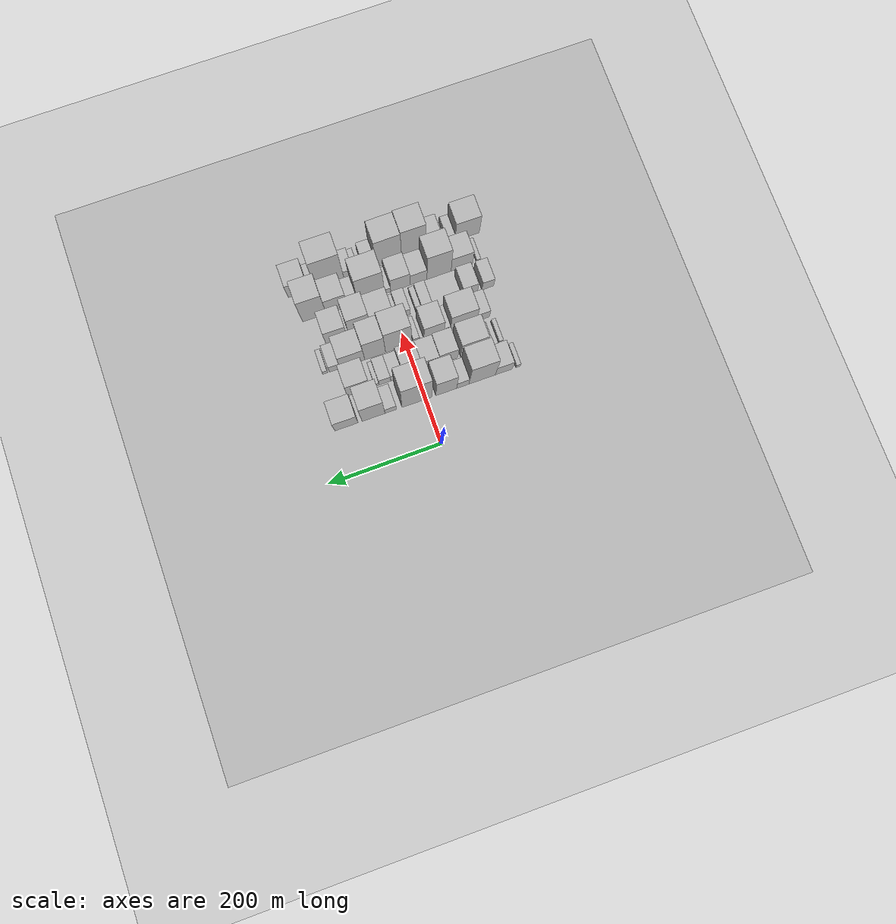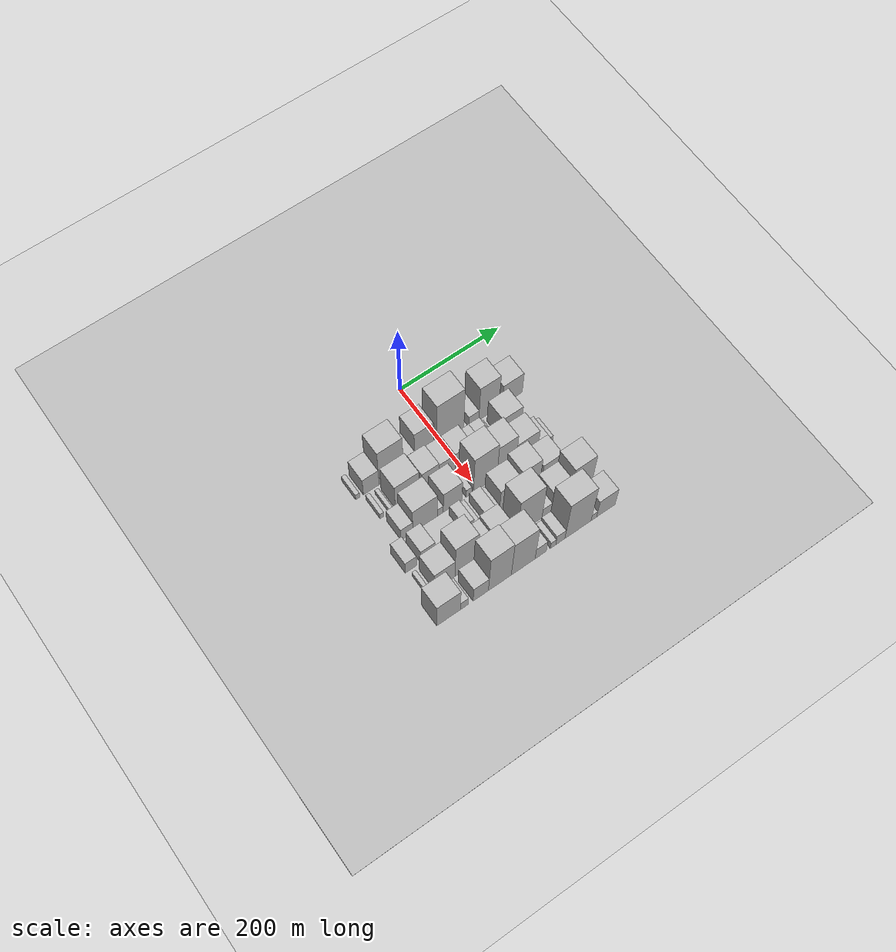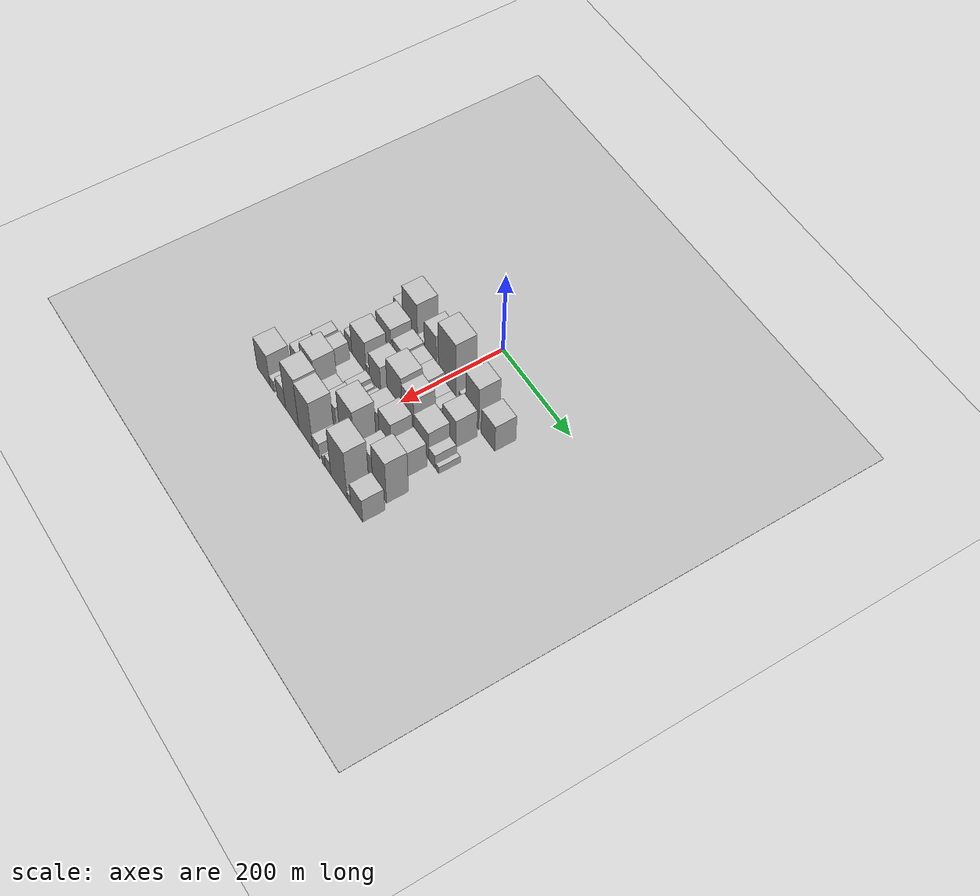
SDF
<sdf version="1.6">
 <world name="default">
  <include><name>ground_plane_1</name><uri>model://HANNAS_ground_plane</uri></include>
  <include>
   <name>ground_plane_2</name>
   <uri>model://HANNAS_ground_plane</uri>
   <pose>100 0 0  0 0 0</pose>
  </include>
  <model name="building_20">
   <static>1</static>
   <pose>100.0000 -165.7512 0 0.000000 0.000000 0.000000</pose>
   <link name="link">
    <pose>0 0 9.00 0 0 0</pose>
    <collision name="collision"><geometry><box><size>40.0000 7.8009 18.0000</size></box></geometry></collision>
    <visual name="visual">
     <cast_shadows>0</cast_shadows>
     <geometry><box><size>40.0000 7.8009 18.0000</size></box></geometry>
     <material>
      <script>
       <uri>model://HANNAS_wall/materials/scripts</uri>
       <uri>model://HANNAS_wall/materials/textures</uri>
       <name>vrc/HANNAS_wall</name>
      </script>
     </material>
    </visual>
   </link>
  </model>
  <model name="building_21">
   <static>1</static>
   <pose>100.0000 -139.6420 0 0.000000 0.000000 0.000000</pose>
   <link name="link">
    <pose>0 0 28.50 0 0 0</pose>
    <collision name="collision"><geometry><box><size>40.0000 30.4175 57.0000</size></box></geometry></collision>
    <visual name="visual">
     <cast_shadows>0</cast_shadows>
     <geometry><box><size>40.0000 30.4175 57.0000</size></box></geometry>
     <material>
      <script>
       <uri>model://HANNAS_wall/materials/scripts</uri>
       <uri>model://HANNAS_wall/materials/textures</uri>
       <name>vrc/HANNAS_wall</name>
      </script>
     </material>
    </visual>
   </link>
  </model>
  <model name="building_22">
   <static>1</static>
   <pose>100.0000 -100.7793 0 0.000000 0.000000 0.000000</pose>
   <link name="link">
    <pose>0 0 60.00 0 0 0</pose>
    <collision name="collision"><geometry><box><size>40.0000 47.3079 120.0000</size></box></geometry></collision>
    <visual name="visual">
     <cast_shadows>0</cast_shadows>
     <geometry><box><size>40.0000 47.3079 120.0000</size></box></geometry>
     <material>
      <script>
       <uri>model://HANNAS_wall/materials/scripts</uri>
       <uri>model://HANNAS_wall/materials/textures</uri>
       <name>vrc/HANNAS_wall</name>
      </script>
     </material>
    </visual>
   </link>
  </model>
  <model name="building_23">
   <static>1</static>
   <pose>100.0000 -66.0736 0 0.000000 0.000000 0.000000</pose>
   <link name="link">
    <pose>0 0 21.00 0 0 0</pose>
    <collision name="collision"><geometry><box><size>40.0000 22.1034 42.0000</size></box></geometry></collision>
    <visual name="visual">
     <cast_shadows>0</cast_shadows>
     <geometry><box><size>40.0000 22.1034 42.0000</size></box></geometry>
     <material>
      <script>
       <uri>model://HANNAS_wall/materials/scripts</uri>
       <uri>model://HANNAS_wall/materials/textures</uri>
       <name>vrc/HANNAS_wall</name>
      </script>
     </material>
    </visual>
   </link>
  </model>
  <model name="building_24">
   <static>1</static>
   <pose>100.0000 -36.5638 0 0.000000 0.000000 0.000000</pose>
   <link name="link">
    <pose>0 0 51.00 0 0 0</pose>
    <collision name="collision"><geometry><box><size>40.0000 36.9162 102.0000</size></box></geometry></collision>
    <visual name="visual">
     <cast_shadows>0</cast_shadows>
     <geometry><box><size>40.0000 36.9162 102.0000</size></box></geometry>
     <material>
      <script>
       <uri>model://HANNAS_wall/materials/scripts</uri>
       <uri>model://HANNAS_wall/materials/textures</uri>
       <name>vrc/HANNAS_wall</name>
      </script>
     </material>
    </visual>
   </link>
  </model>
  <model name="building_25">
   <static>1</static>
   <pose>100.0000 15.4836 0 0.000000 0.000000 0.000000</pose>
   <link name="link">
    <pose>0 0 75.00 0 0 0</pose>
    <collision name="collision"><geometry><box><size>40.0000 53.1788 150.0000</size></box></geometry></collision>
    <visual name="visual">
     <cast_shadows>0</cast_shadows>
     <geometry><box><size>40.0000 53.1788 150.0000</size></box></geometry>
     <material>
      <script>
       <uri>model://HANNAS_wall/materials/scripts</uri>
       <uri>model://HANNAS_wall/materials/textures</uri>
       <name>vrc/HANNAS_wall</name>
      </script>
     </material>
    </visual>
   </link>
  </model>
  <model name="building_26">
   <static>1</static>
   <pose>100.0000 62.2658 0 0.000000 0.000000 0.000000</pose>
   <link name="link">
    <pose>0 0 18.00 0 0 0</pose>
    <collision name="collision"><geometry><box><size>40.0000 20.3856 36.0000</size></box></geometry></collision>
    <visual name="visual">
     <cast_shadows>0</cast_shadows>
     <geometry><box><size>40.0000 20.3856 36.0000</size></box></geometry>
     <material>
      <script>
       <uri>model://HANNAS_wall/materials/scripts</uri>
       <uri>model://HANNAS_wall/materials/textures</uri>
       <name>vrc/HANNAS_wall</name>
      </script>
     </material>
    </visual>
   </link>
  </model>
  <model name="building_27">
   <static>1</static>
   <pose>100.0000 92.6056 0 0.000000 0.000000 0.000000</pose>
   <link name="link">
    <pose>0 0 57.00 0 0 0</pose>
    <collision name="collision"><geometry><box><size>40.0000 40.2940 114.0000</size></box></geometry></collision>
    <visual name="visual">
     <cast_shadows>0</cast_shadows>
     <geometry><box><size>40.0000 40.2940 114.0000</size></box></geometry>
     <material>
      <script>
       <uri>model://HANNAS_wall/materials/scripts</uri>
       <uri>model://HANNAS_wall/materials/textures</uri>
       <name>vrc/HANNAS_wall</name>
      </script>
     </material>
    </visual>
   </link>
  </model>
  <model name="building_28">
   <static>1</static>
   <pose>100.0000 140.1536 0 0.000000 0.000000 0.000000</pose>
   <link name="link">
    <pose>0 0 34.50 0 0 0</pose>
    <collision name="collision"><geometry><box><size>40.0000 40.8019 69.0000</size></box></geometry></collision>
    <visual name="visual">
     <cast_shadows>0</cast_shadows>
     <geometry><box><size>40.0000 40.8019 69.0000</size></box></geometry>
     <material>
      <script>
       <uri>model://HANNAS_wall/materials/scripts</uri>
       <uri>model://HANNAS_wall/materials/textures</uri>
       <name>vrc/HANNAS_wall</name>
      </script>
     </material>
    </visual>
   </link>
  </model>
  <model name="building_65">
   <static>1</static>
   <pose>149.0000 -152.5041 0 0.000000 0.000000 0.000000</pose>
   <link name="link">
    <pose>0 0 9.00 0 0 0</pose>
    <collision name="collision"><geometry><box><size>40.0000 7.4362 18.0000</size></box></geometry></collision>
    <visual name="visual">
     <cast_shadows>0</cast_shadows>
     <geometry><box><size>40.0000 7.4362 18.0000</size></box></geometry>
     <material>
      <script>
       <uri>model://HANNAS_wall/materials/scripts</uri>
       <uri>model://HANNAS_wall/materials/textures</uri>
       <name>vrc/HANNAS_wall</name>
      </script>
     </material>
    </visual>
   </link>
  </model>
  <model name="building_66">
   <static>1</static>
   <pose>149.0000 -135.3655 0 0.000000 0.000000 0.000000</pose>
   <link name="link">
    <pose>0 0 7.50 0 0 0</pose>
    <collision name="collision"><geometry><box><size>40.0000 6.8410 15.0000</size></box></geometry></collision>
    <visual name="visual">
     <cast_shadows>0</cast_shadows>
     <geometry><box><size>40.0000 6.8410 15.0000</size></box></geometry>
     <material>
      <script>
       <uri>model://HANNAS_wall/materials/scripts</uri>
       <uri>model://HANNAS_wall/materials/textures</uri>
       <name>vrc/HANNAS_wall</name>
      </script>
     </material>
    </visual>
   </link>
  </model>
  <model name="building_67">
   <static>1</static>
   <pose>149.0000 -103.4759 0 0.000000 0.000000 0.000000</pose>
   <link name="link">
    <pose>0 0 42.00 0 0 0</pose>
    <collision name="collision"><geometry><box><size>40.0000 46.9382 84.0000</size></box></geometry></collision>
    <visual name="visual">
     <cast_shadows>0</cast_shadows>
     <geometry><box><size>40.0000 46.9382 84.0000</size></box></geometry>
     <material>
      <script>
       <uri>model://HANNAS_wall/materials/scripts</uri>
       <uri>model://HANNAS_wall/materials/textures</uri>
       <name>vrc/HANNAS_wall</name>
      </script>
     </material>
    </visual>
   </link>
  </model>
  <model name="building_68">
   <static>1</static>
   <pose>149.0000 -58.2861 0 0.000000 0.000000 0.000000</pose>
   <link name="link">
    <pose>0 0 33.00 0 0 0</pose>
    <collision name="collision"><geometry><box><size>40.0000 33.4414 66.0000</size></box></geometry></collision>
    <visual name="visual">
     <cast_shadows>0</cast_shadows>
     <geometry><box><size>40.0000 33.4414 66.0000</size></box></geometry>
     <material>
      <script>
       <uri>model://HANNAS_wall/materials/scripts</uri>
       <uri>model://HANNAS_wall/materials/textures</uri>
       <name>vrc/HANNAS_wall</name>
      </script>
     </material>
    </visual>
   </link>
  </model>
  <model name="building_69">
   <static>1</static>
   <pose>149.0000 -25.9695 0 0.000000 0.000000 0.000000</pose>
   <link name="link">
    <pose>0 0 30.00 0 0 0</pose>
    <collision name="collision"><geometry><box><size>40.0000 31.1917 60.0000</size></box></geometry></collision>
    <visual name="visual">
     <cast_shadows>0</cast_shadows>
     <geometry><box><size>40.0000 31.1917 60.0000</size></box></geometry>
     <material>
      <script>
       <uri>model://HANNAS_wall/materials/scripts</uri>
       <uri>model://HANNAS_wall/materials/textures</uri>
       <name>vrc/HANNAS_wall</name>
      </script>
     </material>
    </visual>
   </link>
  </model>
  <model name="building_70">
   <static>1</static>
   <pose>149.0000 6.5642 0 0.000000 0.000000 0.000000</pose>
   <link name="link">
    <pose>0 0 30.00 0 0 0</pose>
    <collision name="collision"><geometry><box><size>40.0000 33.8758 60.0000</size></box></geometry></collision>
    <visual name="visual">
     <cast_shadows>0</cast_shadows>
     <geometry><box><size>40.0000 33.8758 60.0000</size></box></geometry>
     <material>
      <script>
       <uri>model://HANNAS_wall/materials/scripts</uri>
       <uri>model://HANNAS_wall/materials/textures</uri>
       <name>vrc/HANNAS_wall</name>
      </script>
     </material>
    </visual>
   </link>
  </model>
  <model name="building_71">
   <static>1</static>
   <pose>149.0000 34.1998 0 0.000000 0.000000 0.000000</pose>
   <link name="link">
    <pose>0 0 18.00 0 0 0</pose>
    <collision name="collision"><geometry><box><size>40.0000 21.3952 36.0000</size></box></geometry></collision>
    <visual name="visual">
     <cast_shadows>0</cast_shadows>
     <geometry><box><size>40.0000 21.3952 36.0000</size></box></geometry>
     <material>
      <script>
       <uri>model://HANNAS_wall/materials/scripts</uri>
       <uri>model://HANNAS_wall/materials/textures</uri>
       <name>vrc/HANNAS_wall</name>
      </script>
     </material>
    </visual>
   </link>
  </model>
  <model name="building_72">
   <static>1</static>
   <pose>149.0000 55.3449 0 0.000000 0.000000 0.000000</pose>
   <link name="link">
    <pose>0 0 18.00 0 0 0</pose>
    <collision name="collision"><geometry><box><size>40.0000 20.8950 36.0000</size></box></geometry></collision>
    <visual name="visual">
     <cast_shadows>0</cast_shadows>
     <geometry><box><size>40.0000 20.8950 36.0000</size></box></geometry>
     <material>
      <script>
       <uri>model://HANNAS_wall/materials/scripts</uri>
       <uri>model://HANNAS_wall/materials/textures</uri>
       <name>vrc/HANNAS_wall</name>
      </script>
     </material>
    </visual>
   </link>
  </model>
  <model name="building_73">
   <static>1</static>
   <pose>149.0000 69.5675 0 0.000000 0.000000 0.000000</pose>
   <link name="link">
    <pose>0 0 9.00 0 0 0</pose>
    <collision name="collision"><geometry><box><size>40.0000 7.5502 18.0000</size></box></geometry></collision>
    <visual name="visual">
     <cast_shadows>0</cast_shadows>
     <geometry><box><size>40.0000 7.5502 18.0000</size></box></geometry>
     <material>
      <script>
       <uri>model://HANNAS_wall/materials/scripts</uri>
       <uri>model://HANNAS_wall/materials/textures</uri>
       <name>vrc/HANNAS_wall</name>
      </script>
     </material>
    </visual>
   </link>
  </model>
  <model name="building_74">
   <static>1</static>
   <pose>149.0000 102.2104 0 0.000000 0.000000 0.000000</pose>
   <link name="link">
    <pose>0 0 37.50 0 0 0</pose>
    <collision name="collision"><geometry><box><size>40.0000 39.7356 75.0000</size></box></geometry></collision>
    <visual name="visual">
     <cast_shadows>0</cast_shadows>
     <geometry><box><size>40.0000 39.7356 75.0000</size></box></geometry>
     <material>
      <script>
       <uri>model://HANNAS_wall/materials/scripts</uri>
       <uri>model://HANNAS_wall/materials/textures</uri>
       <name>vrc/HANNAS_wall</name>
      </script>
     </material>
    </visual>
   </link>
  </model>
  <model name="building_120">
   <static>1</static>
   <pose>198.0000 -138.5263 0 0.000000 0.000000 0.000000</pose>
   <link name="link">
    <pose>0 0 21.00 0 0 0</pose>
    <collision name="collision"><geometry><box><size>40.0000 22.8438 42.0000</size></box></geometry></collision>
    <visual name="visual">
     <cast_shadows>0</cast_shadows>
     <geometry><box><size>40.0000 22.8438 42.0000</size></box></geometry>
     <material>
      <script>
       <uri>model://HANNAS_wall/materials/scripts</uri>
       <uri>model://HANNAS_wall/materials/textures</uri>
       <name>vrc/HANNAS_wall</name>
      </script>
     </material>
    </visual>
   </link>
  </model>
  <model name="building_121">
   <static>1</static>
   <pose>198.0000 -103.3935 0 0.000000 0.000000 0.000000</pose>
   <link name="link">
    <pose>0 0 42.00 0 0 0</pose>
    <collision name="collision"><geometry><box><size>40.0000 47.4218 84.0000</size></box></geometry></collision>
    <visual name="visual">
     <cast_shadows>0</cast_shadows>
     <geometry><box><size>40.0000 47.4218 84.0000</size></box></geometry>
     <material>
      <script>
       <uri>model://HANNAS_wall/materials/scripts</uri>
       <uri>model://HANNAS_wall/materials/textures</uri>
       <name>vrc/HANNAS_wall</name>
      </script>
     </material>
    </visual>
   </link>
  </model>
  <model name="building_122">
   <static>1</static>
   <pose>198.0000 -74.0513 0 0.000000 0.000000 0.000000</pose>
   <link name="link">
    <pose>0 0 13.50 0 0 0</pose>
    <collision name="collision"><geometry><box><size>40.0000 11.2626 27.0000</size></box></geometry></collision>
    <visual name="visual">
     <cast_shadows>0</cast_shadows>
     <geometry><box><size>40.0000 11.2626 27.0000</size></box></geometry>
     <material>
      <script>
       <uri>model://HANNAS_wall/materials/scripts</uri>
       <uri>model://HANNAS_wall/materials/textures</uri>
       <name>vrc/HANNAS_wall</name>
      </script>
     </material>
    </visual>
   </link>
  </model>
  <model name="building_123">
   <static>1</static>
   <pose>198.0000 -50.0202 0 0.000000 0.000000 0.000000</pose>
   <link name="link">
    <pose>0 0 36.00 0 0 0</pose>
    <collision name="collision"><geometry><box><size>40.0000 36.7995 72.0000</size></box></geometry></collision>
    <visual name="visual">
     <cast_shadows>0</cast_shadows>
     <geometry><box><size>40.0000 36.7995 72.0000</size></box></geometry>
     <material>
      <script>
       <uri>model://HANNAS_wall/materials/scripts</uri>
       <uri>model://HANNAS_wall/materials/textures</uri>
       <name>vrc/HANNAS_wall</name>
      </script>
     </material>
    </visual>
   </link>
  </model>
  <model name="building_124">
   <static>1</static>
   <pose>198.0000 -18.1444 0 0.000000 0.000000 0.000000</pose>
   <link name="link">
    <pose>0 0 13.50 0 0 0</pose>
    <collision name="collision"><geometry><box><size>40.0000 10.9522 27.0000</size></box></geometry></collision>
    <visual name="visual">
     <cast_shadows>0</cast_shadows>
     <geometry><box><size>40.0000 10.9522 27.0000</size></box></geometry>
     <material>
      <script>
       <uri>model://HANNAS_wall/materials/scripts</uri>
       <uri>model://HANNAS_wall/materials/textures</uri>
       <name>vrc/HANNAS_wall</name>
      </script>
     </material>
    </visual>
   </link>
  </model>
  <model name="building_125">
   <static>1</static>
   <pose>198.0000 13.7783 0 0.000000 0.000000 0.000000</pose>
   <link name="link">
    <pose>0 0 63.00 0 0 0</pose>
    <collision name="collision"><geometry><box><size>40.0000 46.8933 126.0000</size></box></geometry></collision>
    <visual name="visual">
     <cast_shadows>0</cast_shadows>
     <geometry><box><size>40.0000 46.8933 126.0000</size></box></geometry>
     <material>
      <script>
       <uri>model://HANNAS_wall/materials/scripts</uri>
       <uri>model://HANNAS_wall/materials/textures</uri>
       <name>vrc/HANNAS_wall</name>
      </script>
     </material>
    </visual>
   </link>
  </model>
  <model name="building_126">
   <static>1</static>
   <pose>198.0000 55.8448 0 0.000000 0.000000 0.000000</pose>
   <link name="link">
    <pose>0 0 55.50 0 0 0</pose>
    <collision name="collision"><geometry><box><size>40.0000 37.2398 111.0000</size></box></geometry></collision>
    <visual name="visual">
     <cast_shadows>0</cast_shadows>
     <geometry><box><size>40.0000 37.2398 111.0000</size></box></geometry>
     <material>
      <script>
       <uri>model://HANNAS_wall/materials/scripts</uri>
       <uri>model://HANNAS_wall/materials/textures</uri>
       <name>vrc/HANNAS_wall</name>
      </script>
     </material>
    </visual>
   </link>
  </model>
  <model name="building_127">
   <static>1</static>
   <pose>198.0000 96.5458 0 0.000000 0.000000 0.000000</pose>
   <link name="link">
    <pose>0 0 37.50 0 0 0</pose>
    <collision name="collision"><geometry><box><size>40.0000 44.1621 75.0000</size></box></geometry></collision>
    <visual name="visual">
     <cast_shadows>0</cast_shadows>
     <geometry><box><size>40.0000 44.1621 75.0000</size></box></geometry>
     <material>
      <script>
       <uri>model://HANNAS_wall/materials/scripts</uri>
       <uri>model://HANNAS_wall/materials/textures</uri>
       <name>vrc/HANNAS_wall</name>
      </script>
     </material>
    </visual>
   </link>
  </model>
  <model name="building_128">
   <static>1</static>
   <pose>198.0000 128.1783 0 0.000000 0.000000 0.000000</pose>
   <link name="link">
    <pose>0 0 18.00 0 0 0</pose>
    <collision name="collision"><geometry><box><size>40.0000 19.1030 36.0000</size></box></geometry></collision>
    <visual name="visual">
     <cast_shadows>0</cast_shadows>
     <geometry><box><size>40.0000 19.1030 36.0000</size></box></geometry>
     <material>
      <script>
       <uri>model://HANNAS_wall/materials/scripts</uri>
       <uri>model://HANNAS_wall/materials/textures</uri>
       <name>vrc/HANNAS_wall</name>
      </script>
     </material>
    </visual>
   </link>
  </model>
  <model name="building_129">
   <static>1</static>
   <pose>198.0000 145.1097 0 0.000000 0.000000 0.000000</pose>
   <link name="link">
    <pose>0 0 9.00 0 0 0</pose>
    <collision name="collision"><geometry><box><size>40.0000 8.7597 18.0000</size></box></geometry></collision>
    <visual name="visual">
     <cast_shadows>0</cast_shadows>
     <geometry><box><size>40.0000 8.7597 18.0000</size></box></geometry>
     <material>
      <script>
       <uri>model://HANNAS_wall/materials/scripts</uri>
       <uri>model://HANNAS_wall/materials/textures</uri>
       <name>vrc/HANNAS_wall</name>
      </script>
     </material>
    </visual>
   </link>
  </model>
  <model name="building_171">
   <static>1</static>
   <pose>247.0000 -165.0149 0 0.000000 0.000000 0.000000</pose>
   <link name="link">
    <pose>0 0 21.00 0 0 0</pose>
    <collision name="collision"><geometry><box><size>40.0000 21.3615 42.0000</size></box></geometry></collision>
    <visual name="visual">
     <cast_shadows>0</cast_shadows>
     <geometry><box><size>40.0000 21.3615 42.0000</size></box></geometry>
     <material>
      <script>
       <uri>model://HANNAS_wall/materials/scripts</uri>
       <uri>model://HANNAS_wall/materials/textures</uri>
       <name>vrc/HANNAS_wall</name>
      </script>
     </material>
    </visual>
   </link>
  </model>
  <model name="building_172">
   <static>1</static>
   <pose>247.0000 -132.5725 0 0.000000 0.000000 0.000000</pose>
   <link name="link">
    <pose>0 0 24.00 0 0 0</pose>
    <collision name="collision"><geometry><box><size>40.0000 27.5232 48.0000</size></box></geometry></collision>
    <visual name="visual">
     <cast_shadows>0</cast_shadows>
     <geometry><box><size>40.0000 27.5232 48.0000</size></box></geometry>
     <material>
      <script>
       <uri>model://HANNAS_wall/materials/scripts</uri>
       <uri>model://HANNAS_wall/materials/textures</uri>
       <name>vrc/HANNAS_wall</name>
      </script>
     </material>
    </visual>
   </link>
  </model>
  <model name="building_173">
   <static>1</static>
   <pose>247.0000 -53.6121 0 0.000000 0.000000 0.000000</pose>
   <link name="link">
    <pose>0 0 18.00 0 0 0</pose>
    <collision name="collision"><geometry><box><size>40.0000 18.7992 36.0000</size></box></geometry></collision>
    <visual name="visual">
     <cast_shadows>0</cast_shadows>
     <geometry><box><size>40.0000 18.7992 36.0000</size></box></geometry>
     <material>
      <script>
       <uri>model://HANNAS_wall/materials/scripts</uri>
       <uri>model://HANNAS_wall/materials/textures</uri>
       <name>vrc/HANNAS_wall</name>
      </script>
     </material>
    </visual>
   </link>
  </model>
  <model name="building_174">
   <static>1</static>
   <pose>247.0000 -39.3130 0 0.000000 0.000000 0.000000</pose>
   <link name="link">
    <pose>0 0 12.00 0 0 0</pose>
    <collision name="collision"><geometry><box><size>40.0000 9.7991 24.0000</size></box></geometry></collision>
    <visual name="visual">
     <cast_shadows>0</cast_shadows>
     <geometry><box><size>40.0000 9.7991 24.0000</size></box></geometry>
     <material>
      <script>
       <uri>model://HANNAS_wall/materials/scripts</uri>
       <uri>model://HANNAS_wall/materials/textures</uri>
       <name>vrc/HANNAS_wall</name>
      </script>
     </material>
    </visual>
   </link>
  </model>
  <model name="building_175">
   <static>1</static>
   <pose>247.0000 -13.9985 0 0.000000 0.000000 0.000000</pose>
   <link name="link">
    <pose>0 0 18.00 0 0 0</pose>
    <collision name="collision"><geometry><box><size>40.0000 20.8299 36.0000</size></box></geometry></collision>
    <visual name="visual">
     <cast_shadows>0</cast_shadows>
     <geometry><box><size>40.0000 20.8299 36.0000</size></box></geometry>
     <material>
      <script>
       <uri>model://HANNAS_wall/materials/scripts</uri>
       <uri>model://HANNAS_wall/materials/textures</uri>
       <name>vrc/HANNAS_wall</name>
      </script>
     </material>
    </visual>
   </link>
  </model>
  <model name="building_176">
   <static>1</static>
   <pose>247.0000 1.3064 0 0.000000 0.000000 0.000000</pose>
   <link name="link">
    <pose>0 0 10.50 0 0 0</pose>
    <collision name="collision"><geometry><box><size>40.0000 9.7798 21.0000</size></box></geometry></collision>
    <visual name="visual">
     <cast_shadows>0</cast_shadows>
     <geometry><box><size>40.0000 9.7798 21.0000</size></box></geometry>
     <material>
      <script>
       <uri>model://HANNAS_wall/materials/scripts</uri>
       <uri>model://HANNAS_wall/materials/textures</uri>
       <name>vrc/HANNAS_wall</name>
      </script>
     </material>
    </visual>
   </link>
  </model>
  <model name="building_177">
   <static>1</static>
   <pose>247.0000 26.9276 0 0.000000 0.000000 0.000000</pose>
   <link name="link">
    <pose>0 0 37.50 0 0 0</pose>
    <collision name="collision"><geometry><box><size>40.0000 41.4624 75.0000</size></box></geometry></collision>
    <visual name="visual">
     <cast_shadows>0</cast_shadows>
     <geometry><box><size>40.0000 41.4624 75.0000</size></box></geometry>
     <material>
      <script>
       <uri>model://HANNAS_wall/materials/scripts</uri>
       <uri>model://HANNAS_wall/materials/textures</uri>
       <name>vrc/HANNAS_wall</name>
      </script>
     </material>
    </visual>
   </link>
  </model>
  <model name="building_178">
   <static>1</static>
   <pose>247.0000 66.6737 0 0.000000 0.000000 0.000000</pose>
   <link name="link">
    <pose>0 0 48.00 0 0 0</pose>
    <collision name="collision"><geometry><box><size>40.0000 38.0299 96.0000</size></box></geometry></collision>
    <visual name="visual">
     <cast_shadows>0</cast_shadows>
     <geometry><box><size>40.0000 38.0299 96.0000</size></box></geometry>
     <material>
      <script>
       <uri>model://HANNAS_wall/materials/scripts</uri>
       <uri>model://HANNAS_wall/materials/textures</uri>
       <name>vrc/HANNAS_wall</name>
      </script>
     </material>
    </visual>
   </link>
  </model>
  <model name="building_179">
   <static>1</static>
   <pose>247.0000 108.6421 0 0.000000 0.000000 0.000000</pose>
   <link name="link">
    <pose>0 0 33.00 0 0 0</pose>
    <collision name="collision"><geometry><box><size>40.0000 37.9068 66.0000</size></box></geometry></collision>
    <visual name="visual">
     <cast_shadows>0</cast_shadows>
     <geometry><box><size>40.0000 37.9068 66.0000</size></box></geometry>
     <material>
      <script>
       <uri>model://HANNAS_wall/materials/scripts</uri>
       <uri>model://HANNAS_wall/materials/textures</uri>
       <name>vrc/HANNAS_wall</name>
      </script>
     </material>
    </visual>
   </link>
  </model>
  <model name="building_219">
   <static>1</static>
   <pose>296.0000 -165.8734 0 0.000000 0.000000 0.000000</pose>
   <link name="link">
    <pose>0 0 7.50 0 0 0</pose>
    <collision name="collision"><geometry><box><size>40.0000 7.4172 15.0000</size></box></geometry></collision>
    <visual name="visual">
     <cast_shadows>0</cast_shadows>
     <geometry><box><size>40.0000 7.4172 15.0000</size></box></geometry>
     <material>
      <script>
       <uri>model://HANNAS_wall/materials/scripts</uri>
       <uri>model://HANNAS_wall/materials/textures</uri>
       <name>vrc/HANNAS_wall</name>
      </script>
     </material>
    </visual>
   </link>
  </model>
  <model name="building_220">
   <static>1</static>
   <pose>296.0000 -135.4113 0 0.000000 0.000000 0.000000</pose>
   <link name="link">
    <pose>0 0 33.00 0 0 0</pose>
    <collision name="collision"><geometry><box><size>40.0000 39.5070 66.0000</size></box></geometry></collision>
    <visual name="visual">
     <cast_shadows>0</cast_shadows>
     <geometry><box><size>40.0000 39.5070 66.0000</size></box></geometry>
     <material>
      <script>
       <uri>model://HANNAS_wall/materials/scripts</uri>
       <uri>model://HANNAS_wall/materials/textures</uri>
       <name>vrc/HANNAS_wall</name>
      </script>
     </material>
    </visual>
   </link>
  </model>
  <model name="building_221">
   <static>1</static>
   <pose>296.0000 -93.7131 0 0.000000 0.000000 0.000000</pose>
   <link name="link">
    <pose>0 0 58.50 0 0 0</pose>
    <collision name="collision"><geometry><box><size>40.0000 43.8895 117.0000</size></box></geometry></collision>
    <visual name="visual">
     <cast_shadows>0</cast_shadows>
     <geometry><box><size>40.0000 43.8895 117.0000</size></box></geometry>
     <material>
      <script>
       <uri>model://HANNAS_wall/materials/scripts</uri>
       <uri>model://HANNAS_wall/materials/textures</uri>
       <name>vrc/HANNAS_wall</name>
      </script>
     </material>
    </visual>
   </link>
  </model>
  <model name="building_222">
   <static>1</static>
   <pose>296.0000 -56.4904 0 0.000000 0.000000 0.000000</pose>
   <link name="link">
    <pose>0 0 27.00 0 0 0</pose>
    <collision name="collision"><geometry><box><size>40.0000 30.5558 54.0000</size></box></geometry></collision>
    <visual name="visual">
     <cast_shadows>0</cast_shadows>
     <geometry><box><size>40.0000 30.5558 54.0000</size></box></geometry>
     <material>
      <script>
       <uri>model://HANNAS_wall/materials/scripts</uri>
       <uri>model://HANNAS_wall/materials/textures</uri>
       <name>vrc/HANNAS_wall</name>
      </script>
     </material>
    </visual>
   </link>
  </model>
  <model name="building_223">
   <static>1</static>
   <pose>296.0000 -23.6454 0 0.000000 0.000000 0.000000</pose>
   <link name="link">
    <pose>0 0 33.00 0 0 0</pose>
    <collision name="collision"><geometry><box><size>40.0000 35.1342 66.0000</size></box></geometry></collision>
    <visual name="visual">
     <cast_shadows>0</cast_shadows>
     <geometry><box><size>40.0000 35.1342 66.0000</size></box></geometry>
     <material>
      <script>
       <uri>model://HANNAS_wall/materials/scripts</uri>
       <uri>model://HANNAS_wall/materials/textures</uri>
       <name>vrc/HANNAS_wall</name>
      </script>
     </material>
    </visual>
   </link>
  </model>
  <model name="building_224">
   <static>1</static>
   <pose>296.0000 -0.6016 0 0.000000 0.000000 0.000000</pose>
   <link name="link">
    <pose>0 0 12.00 0 0 0</pose>
    <collision name="collision"><geometry><box><size>40.0000 10.9533 24.0000</size></box></geometry></collision>
    <visual name="visual">
     <cast_shadows>0</cast_shadows>
     <geometry><box><size>40.0000 10.9533 24.0000</size></box></geometry>
     <material>
      <script>
       <uri>model://HANNAS_wall/materials/scripts</uri>
       <uri>model://HANNAS_wall/materials/textures</uri>
       <name>vrc/HANNAS_wall</name>
      </script>
     </material>
    </visual>
   </link>
  </model>
  <model name="building_225">
   <static>1</static>
   <pose>296.0000 29.1961 0 0.000000 0.000000 0.000000</pose>
   <link name="link">
    <pose>0 0 64.50 0 0 0</pose>
    <collision name="collision"><geometry><box><size>40.0000 48.6422 129.0000</size></box></geometry></collision>
    <visual name="visual">
     <cast_shadows>0</cast_shadows>
     <geometry><box><size>40.0000 48.6422 129.0000</size></box></geometry>
     <material>
      <script>
       <uri>model://HANNAS_wall/materials/scripts</uri>
       <uri>model://HANNAS_wall/materials/textures</uri>
       <name>vrc/HANNAS_wall</name>
      </script>
     </material>
    </visual>
   </link>
  </model>
  <model name="building_226">
   <static>1</static>
   <pose>296.0000 62.8973 0 0.000000 0.000000 0.000000</pose>
   <link name="link">
    <pose>0 0 18.00 0 0 0</pose>
    <collision name="collision"><geometry><box><size>40.0000 18.7602 36.0000</size></box></geometry></collision>
    <visual name="visual">
     <cast_shadows>0</cast_shadows>
     <geometry><box><size>40.0000 18.7602 36.0000</size></box></geometry>
     <material>
      <script>
       <uri>model://HANNAS_wall/materials/scripts</uri>
       <uri>model://HANNAS_wall/materials/textures</uri>
       <name>vrc/HANNAS_wall</name>
      </script>
     </material>
    </visual>
   </link>
  </model>
  <model name="building_227">
   <static>1</static>
   <pose>296.0000 91.2664 0 0.000000 0.000000 0.000000</pose>
   <link name="link">
    <pose>0 0 37.50 0 0 0</pose>
    <collision name="collision"><geometry><box><size>40.0000 37.9779 75.0000</size></box></geometry></collision>
    <visual name="visual">
     <cast_shadows>0</cast_shadows>
     <geometry><box><size>40.0000 37.9779 75.0000</size></box></geometry>
     <material>
      <script>
       <uri>model://HANNAS_wall/materials/scripts</uri>
       <uri>model://HANNAS_wall/materials/textures</uri>
       <name>vrc/HANNAS_wall</name>
      </script>
     </material>
    </visual>
   </link>
  </model>
  <model name="building_228">
   <static>1</static>
   <pose>296.0000 131.3520 0 0.000000 0.000000 0.000000</pose>
   <link name="link">
    <pose>0 0 57.00 0 0 0</pose>
    <collision name="collision"><geometry><box><size>40.0000 42.1934 114.0000</size></box></geometry></collision>
    <visual name="visual">
     <cast_shadows>0</cast_shadows>
     <geometry><box><size>40.0000 42.1934 114.0000</size></box></geometry>
     <material>
      <script>
       <uri>model://HANNAS_wall/materials/scripts</uri>
       <uri>model://HANNAS_wall/materials/textures</uri>
       <name>vrc/HANNAS_wall</name>
      </script>
     </material>
    </visual>
   </link>
  </model>
  <model name="building_268">
   <static>1</static>
   <pose>345.0000 -162.8733 0 0.000000 0.000000 0.000000</pose>
   <link name="link">
    <pose>0 0 42.00 0 0 0</pose>
    <collision name="collision"><geometry><box><size>40.0000 44.6714 84.0000</size></box></geometry></collision>
    <visual name="visual">
     <cast_shadows>0</cast_shadows>
     <geometry><box><size>40.0000 44.6714 84.0000</size></box></geometry>
     <material>
      <script>
       <uri>model://HANNAS_wall/materials/scripts</uri>
       <uri>model://HANNAS_wall/materials/textures</uri>
       <name>vrc/HANNAS_wall</name>
      </script>
     </material>
    </visual>
   </link>
  </model>
  <model name="building_269">
   <static>1</static>
   <pose>345.0000 -132.9460 0 0.000000 0.000000 0.000000</pose>
   <link name="link">
    <pose>0 0 15.00 0 0 0</pose>
    <collision name="collision"><geometry><box><size>40.0000 15.1831 30.0000</size></box></geometry></collision>
    <visual name="visual">
     <cast_shadows>0</cast_shadows>
     <geometry><box><size>40.0000 15.1831 30.0000</size></box></geometry>
     <material>
      <script>
       <uri>model://HANNAS_wall/materials/scripts</uri>
       <uri>model://HANNAS_wall/materials/textures</uri>
       <name>vrc/HANNAS_wall</name>
      </script>
     </material>
    </visual>
   </link>
  </model>
  <model name="building_270">
   <static>1</static>
   <pose>345.0000 -101.7467 0 0.000000 0.000000 0.000000</pose>
   <link name="link">
    <pose>0 0 27.00 0 0 0</pose>
    <collision name="collision"><geometry><box><size>40.0000 29.2155 54.0000</size></box></geometry></collision>
    <visual name="visual">
     <cast_shadows>0</cast_shadows>
     <geometry><box><size>40.0000 29.2155 54.0000</size></box></geometry>
     <material>
      <script>
       <uri>model://HANNAS_wall/materials/scripts</uri>
       <uri>model://HANNAS_wall/materials/textures</uri>
       <name>vrc/HANNAS_wall</name>
      </script>
     </material>
    </visual>
   </link>
  </model>
  <model name="building_271">
   <static>1</static>
   <pose>345.0000 -65.0873 0 0.000000 0.000000 0.000000</pose>
   <link name="link">
    <pose>0 0 67.50 0 0 0</pose>
    <collision name="collision"><geometry><box><size>40.0000 44.1034 135.0000</size></box></geometry></collision>
    <visual name="visual">
     <cast_shadows>0</cast_shadows>
     <geometry><box><size>40.0000 44.1034 135.0000</size></box></geometry>
     <material>
      <script>
       <uri>model://HANNAS_wall/materials/scripts</uri>
       <uri>model://HANNAS_wall/materials/textures</uri>
       <name>vrc/HANNAS_wall</name>
      </script>
     </material>
    </visual>
   </link>
  </model>
  <model name="building_272">
   <static>1</static>
   <pose>345.0000 -19.8369 0 0.000000 0.000000 0.000000</pose>
   <link name="link">
    <pose>0 0 64.50 0 0 0</pose>
    <collision name="collision"><geometry><box><size>40.0000 46.3974 129.0000</size></box></geometry></collision>
    <visual name="visual">
     <cast_shadows>0</cast_shadows>
     <geometry><box><size>40.0000 46.3974 129.0000</size></box></geometry>
     <material>
      <script>
       <uri>model://HANNAS_wall/materials/scripts</uri>
       <uri>model://HANNAS_wall/materials/textures</uri>
       <name>vrc/HANNAS_wall</name>
      </script>
     </material>
    </visual>
   </link>
  </model>
  <model name="building_273">
   <static>1</static>
   <pose>345.0000 14.4573 0 0.000000 0.000000 0.000000</pose>
   <link name="link">
    <pose>0 0 21.00 0 0 0</pose>
    <collision name="collision"><geometry><box><size>40.0000 22.1910 42.0000</size></box></geometry></collision>
    <visual name="visual">
     <cast_shadows>0</cast_shadows>
     <geometry><box><size>40.0000 22.1910 42.0000</size></box></geometry>
     <material>
      <script>
       <uri>model://HANNAS_wall/materials/scripts</uri>
       <uri>model://HANNAS_wall/materials/textures</uri>
       <name>vrc/HANNAS_wall</name>
      </script>
     </material>
    </visual>
   </link>
  </model>
  <model name="building_274">
   <static>1</static>
   <pose>345.0000 38.7009 0 0.000000 0.000000 0.000000</pose>
   <link name="link">
    <pose>0 0 12.00 0 0 0</pose>
    <collision name="collision"><geometry><box><size>40.0000 10.2963 24.0000</size></box></geometry></collision>
    <visual name="visual">
     <cast_shadows>0</cast_shadows>
     <geometry><box><size>40.0000 10.2963 24.0000</size></box></geometry>
     <material>
      <script>
       <uri>model://HANNAS_wall/materials/scripts</uri>
       <uri>model://HANNAS_wall/materials/textures</uri>
       <name>vrc/HANNAS_wall</name>
      </script>
     </material>
    </visual>
   </link>
  </model>
  <model name="building_275">
   <static>1</static>
   <pose>345.0000 52.8679 0 0.000000 0.000000 0.000000</pose>
   <link name="link">
    <pose>0 0 18.00 0 0 0</pose>
    <collision name="collision"><geometry><box><size>40.0000 18.0375 36.0000</size></box></geometry></collision>
    <visual name="visual">
     <cast_shadows>0</cast_shadows>
     <geometry><box><size>40.0000 18.0375 36.0000</size></box></geometry>
     <material>
      <script>
       <uri>model://HANNAS_wall/materials/scripts</uri>
       <uri>model://HANNAS_wall/materials/textures</uri>
       <name>vrc/HANNAS_wall</name>
      </script>
     </material>
    </visual>
   </link>
  </model>
  <model name="building_276">
   <static>1</static>
   <pose>345.0000 87.8669 0 0.000000 0.000000 0.000000</pose>
   <link name="link">
    <pose>0 0 67.50 0 0 0</pose>
    <collision name="collision"><geometry><box><size>40.0000 51.9605 135.0000</size></box></geometry></collision>
    <visual name="visual">
     <cast_shadows>0</cast_shadows>
     <geometry><box><size>40.0000 51.9605 135.0000</size></box></geometry>
     <material>
      <script>
       <uri>model://HANNAS_wall/materials/scripts</uri>
       <uri>model://HANNAS_wall/materials/textures</uri>
       <name>vrc/HANNAS_wall</name>
      </script>
     </material>
    </visual>
   </link>
  </model>
  <model name="building_277">
   <static>1</static>
   <pose>345.0000 119.4550 0 0.000000 0.000000 0.000000</pose>
   <link name="link">
    <pose>0 0 12.00 0 0 0</pose>
    <collision name="collision"><geometry><box><size>40.0000 11.2157 24.0000</size></box></geometry></collision>
    <visual name="visual">
     <cast_shadows>0</cast_shadows>
     <geometry><box><size>40.0000 11.2157 24.0000</size></box></geometry>
     <material>
      <script>
       <uri>model://HANNAS_wall/materials/scripts</uri>
       <uri>model://HANNAS_wall/materials/textures</uri>
       <name>vrc/HANNAS_wall</name>
      </script>
     </material>
    </visual>
   </link>
  </model>
  <model name="building_278">
   <static>1</static>
   <pose>345.0000 143.7066 0 0.000000 0.000000 0.000000</pose>
   <link name="link">
    <pose>0 0 31.50 0 0 0</pose>
    <collision name="collision"><geometry><box><size>40.0000 37.2876 63.0000</size></box></geometry></collision>
    <visual name="visual">
     <cast_shadows>0</cast_shadows>
     <geometry><box><size>40.0000 37.2876 63.0000</size></box></geometry>
     <material>
      <script>
       <uri>model://HANNAS_wall/materials/scripts</uri>
       <uri>model://HANNAS_wall/materials/textures</uri>
       <name>vrc/HANNAS_wall</name>
      </script>
     </material>
    </visual>
   </link>
  </model>
 </world>
</sdf>
